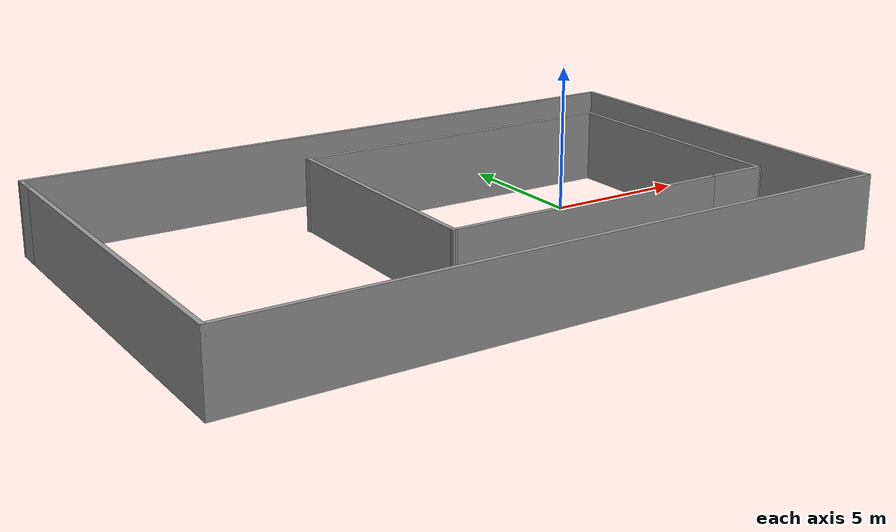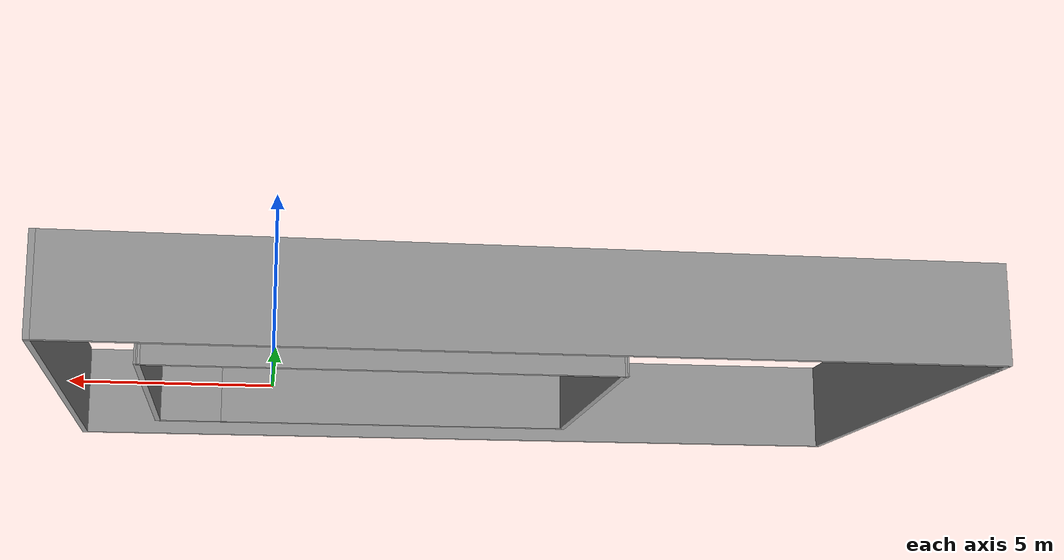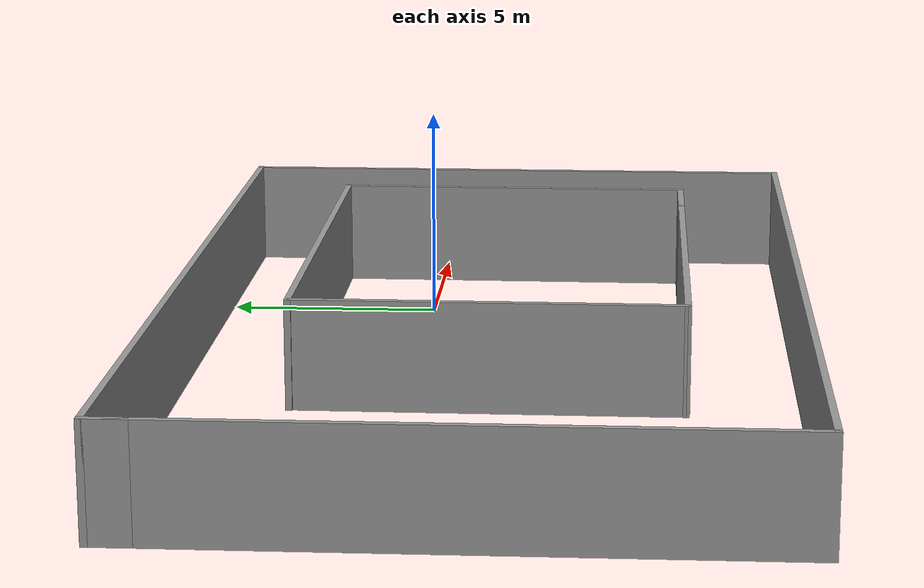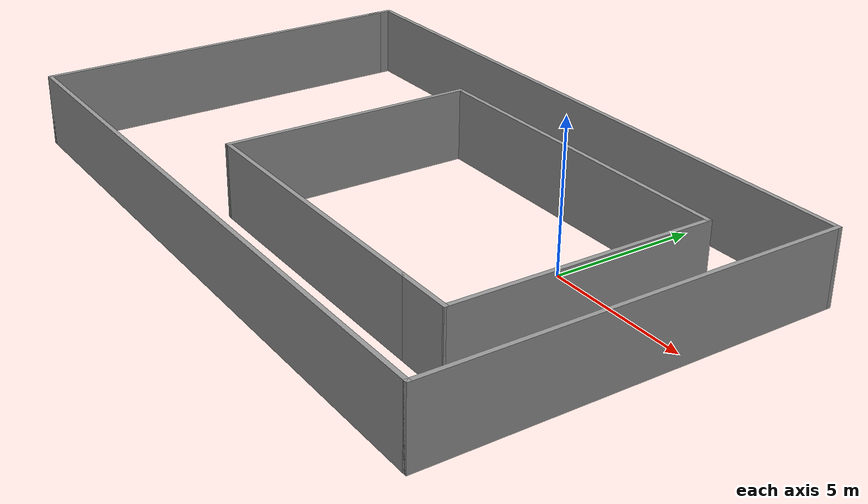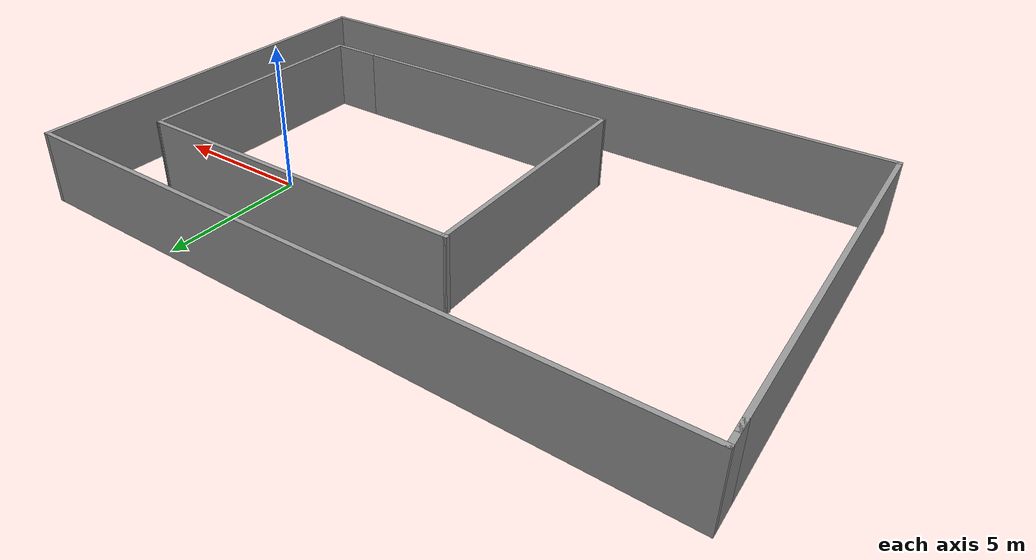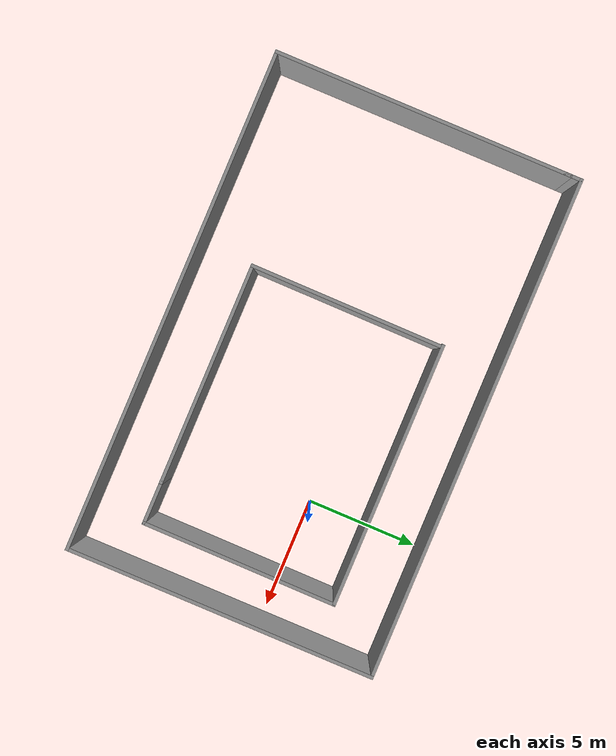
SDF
<?xml version='1.0'?>
<sdf version='1.6'>
  <model name='rosbot_with_qr'>
    <pose frame=''>-5.89253 -1.78995 0 0 -0 0</pose>
    <link name='Wall_0'>
      <collision name='Wall_0_Collision'>
        <geometry>
          <box>
            <size>13.5 0.15 2.5</size>
          </box>
        </geometry>
        <pose frame=''>0 0 1.25 0 -0 0</pose>
      </collision>
      <visual name='Wall_0_Visual'>
        <pose frame=''>0 0 1.25 0 -0 0</pose>
        <geometry>
          <box>
            <size>13.5 0.15 2.5</size>
          </box>
        </geometry>
        <material>
          <script>
            <uri>file://media/materials/scripts/gazebo.material</uri>
            <name>Gazebo/Grey</name>
          </script>
          <ambient>1 1 1 1</ambient>
        </material>
        <meta>
          <layer>0</layer>
        </meta>
      </visual>
      <pose frame=''>-11.3 -0.25 0 0 -0 -1.5708</pose>
    </link>
    <link name='Wall_1'>
      <collision name='Wall_1_Collision'>
        <geometry>
          <box>
            <size>22.75 0.15 2.5</size>
          </box>
        </geometry>
        <pose frame=''>0 0 1.25 0 -0 0</pose>
      </collision>
      <visual name='Wall_1_Visual'>
        <pose frame=''>0 0 1.25 0 -0 0</pose>
        <geometry>
          <box>
            <size>22.75 0.15 2.5</size>
          </box>
        </geometry>
        <material>
          <script>
            <uri>file://media/materials/scripts/gazebo.material</uri>
            <name>Gazebo/Grey</name>
          </script>
          <ambient>1 1 1 1</ambient>
        </material>
        <meta>
          <layer>0</layer>
        </meta>
      </visual>
      <pose frame=''>-0 -6.925 0 0 -0 0</pose>
    </link>
    <link name='Wall_10'>
      <collision name='Wall_10_Collision'>
        <geometry>
          <box>
            <size>11.85 0.15 2.5</size>
          </box>
        </geometry>
        <pose frame=''>0 0 1.25 0 -0 0</pose>
      </collision>
      <visual name='Wall_10_Visual'>
        <pose frame=''>0 0 1.25 0 -0 0</pose>
        <geometry>
          <box>
            <size>11.85 0.15 2.5</size>
          </box>
        </geometry>
        <material>
          <script>
            <uri>file://media/materials/scripts/gazebo.material</uri>
            <name>Gazebo/Grey</name>
          </script>
          <ambient>1 1 1 1</ambient>
        </material>
        <meta>
          <layer>0</layer>
        </meta>
      </visual>
      <pose frame=''>3.20345 4.2849 0 0 -0 3.14159</pose>
    </link>
    <link name='Wall_2'>
      <collision name='Wall_2_Collision'>
        <geometry>
          <box>
            <size>14 0.15 2.5</size>
          </box>
        </geometry>
        <pose frame=''>0 0 1.25 0 -0 0</pose>
      </collision>
      <visual name='Wall_2_Visual'>
        <pose frame=''>0 0 1.25 0 -0 0</pose>
        <geometry>
          <box>
            <size>14 0.15 2.5</size>
          </box>
        </geometry>
        <material>
          <script>
            <uri>file://media/materials/scripts/gazebo.material</uri>
            <name>Gazebo/Grey</name>
          </script>
          <ambient>1 1 1 1</ambient>
        </material>
        <meta>
          <layer>0</layer>
        </meta>
      </visual>
      <pose frame=''>11.3 -0 0 0 -0 1.5708</pose>
    </link>
    <link name='Wall_3'>
      <collision name='Wall_3_Collision'>
        <geometry>
          <box>
            <size>22.75 0.15 2.5</size>
          </box>
        </geometry>
        <pose frame=''>0 0 1.25 0 -0 0</pose>
      </collision>
      <visual name='Wall_3_Visual'>
        <pose frame=''>0 0 1.25 0 -0 0</pose>
        <geometry>
          <box>
            <size>22.75 0.15 2.5</size>
          </box>
        </geometry>
        <material>
          <script>
            <uri>file://media/materials/scripts/gazebo.material</uri>
            <name>Gazebo/Grey</name>
          </script>
          <ambient>1 1 1 1</ambient>
        </material>
        <meta>
          <layer>0</layer>
        </meta>
      </visual>
      <pose frame=''>-0 6.925 0 0 -0 3.14159</pose>
    </link>
    <link name='Wall_4'>
      <collision name='Wall_4_Collision'>
        <geometry>
          <box>
            <size>1 0.15 2.5</size>
          </box>
        </geometry>
        <pose frame=''>0 0 1.25 0 -0 0</pose>
      </collision>
      <visual name='Wall_4_Visual'>
        <pose frame=''>0 0 1.25 0 -0 0</pose>
        <geometry>
          <box>
            <size>1 0.15 2.5</size>
          </box>
        </geometry>
        <material>
          <script>
            <uri>file://media/materials/scripts/gazebo.material</uri>
            <name>Gazebo/Grey</name>
          </script>
          <ambient>1 1 1 1</ambient>
        </material>
        <meta>
          <layer>0</layer>
        </meta>
      </visual>
      <pose frame=''>-11.3 6.5 0 0 -0 -1.5708</pose>
    </link>
    <link name='Wall_6'>
      <collision name='Wall_6_Collision'>
        <geometry>
          <box>
            <size>8.81443 0.15 2.5</size>
          </box>
        </geometry>
        <pose frame=''>0 0 1.25 0 -0 0</pose>
      </collision>
      <visual name='Wall_6_Visual'>
        <pose frame=''>0 0 1.25 0 -0 0</pose>
        <geometry>
          <box>
            <size>8.81443 0.15 2.5</size>
          </box>
        </geometry>
        <material>
          <script>
            <uri>file://media/materials/scripts/gazebo.material</uri>
            <name>Gazebo/Grey</name>
          </script>
          <ambient>1 1 1 1</ambient>
        </material>
        <meta>
          <layer>0</layer>
        </meta>
      </visual>
      <pose frame=''>-2.62329 -0.047316 0 0 -0 -1.57617</pose>
    </link>
    <link name='Wall_7'>
      <collision name='Wall_7_Collision'>
        <geometry>
          <box>
            <size>10 0.15 2.5</size>
          </box>
        </geometry>
        <pose frame=''>0 0 1.25 0 -0 0</pose>
      </collision>
      <visual name='Wall_7_Visual'>
        <pose frame=''>0 0 1.25 0 -0 0</pose>
        <geometry>
          <box>
            <size>10 0.15 2.5</size>
          </box>
        </geometry>
        <material>
          <script>
            <uri>file://media/materials/scripts/gazebo.material</uri>
            <name>Gazebo/Grey</name>
          </script>
          <ambient>1 1 1 1</ambient>
        </material>
        <meta>
          <layer>0</layer>
        </meta>
      </visual>
      <pose frame=''>2.27845 -4.37953 0 0 -0 0</pose>
    </link>
    <link name='Wall_8'>
      <collision name='Wall_8_Collision'>
        <geometry>
          <box>
            <size>2 0.15 2.5</size>
          </box>
        </geometry>
        <pose frame=''>0 0 1.25 0 -0 0</pose>
      </collision>
      <visual name='Wall_8_Visual'>
        <pose frame=''>0 0 1.25 0 -0 0</pose>
        <geometry>
          <box>
            <size>2 0.15 2.5</size>
          </box>
        </geometry>
        <material>
          <script>
            <uri>file://media/materials/scripts/gazebo.material</uri>
            <name>Gazebo/Grey</name>
          </script>
          <ambient>1 1 1 1</ambient>
        </material>
        <meta>
          <layer>0</layer>
        </meta>
      </visual>
      <pose frame=''>8.12845 -4.37953 0 0 -0 0</pose>
    </link>
    <link name='Wall_9'>
      <collision name='Wall_9_Collision'>
        <geometry>
          <box>
            <size>8.81443 0.15 2.5</size>
          </box>
        </geometry>
        <pose frame=''>0 0 1.25 0 -0 0</pose>
      </collision>
      <visual name='Wall_9_Visual'>
        <pose frame=''>0 0 1.25 0 -0 0</pose>
        <geometry>
          <box>
            <size>8.81443 0.15 2.5</size>
          </box>
        </geometry>
        <material>
          <script>
            <uri>file://media/materials/scripts/gazebo.material</uri>
            <name>Gazebo/Grey</name>
          </script>
          <ambient>1 1 1 1</ambient>
        </material>
        <meta>
          <layer>0</layer>
        </meta>
      </visual>
      <pose frame=''>9.07671 -0.047316 0 0 -0 1.56543</pose>
    </link>
    <static>1</static>
  </model>
</sdf>
